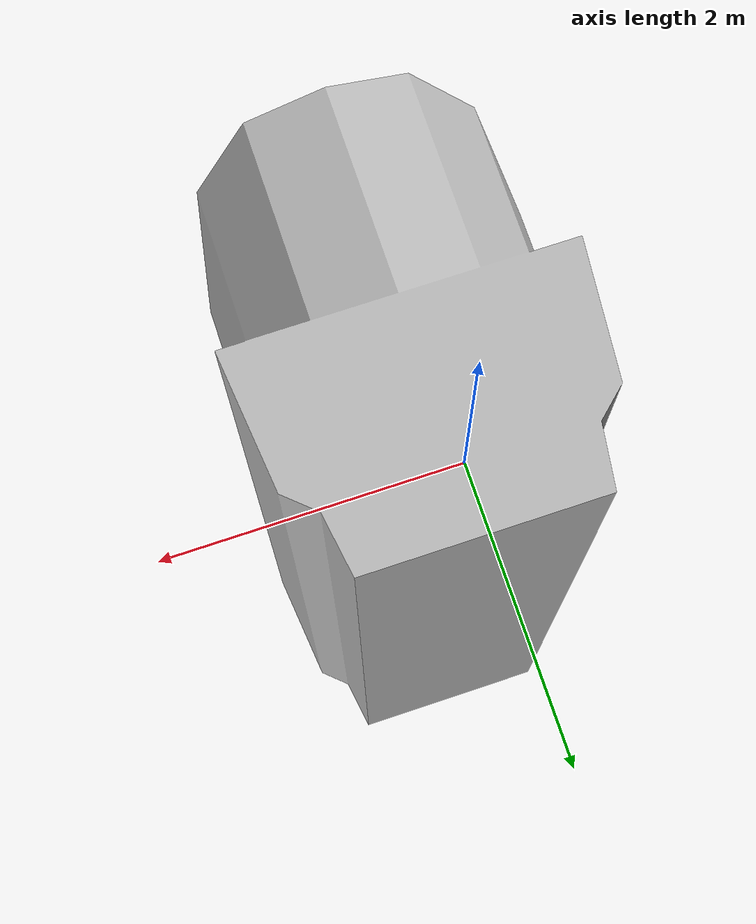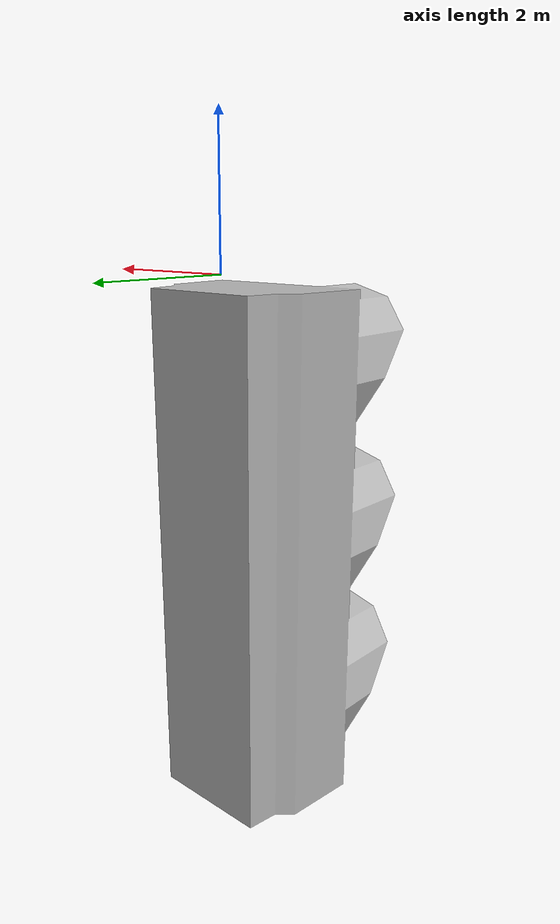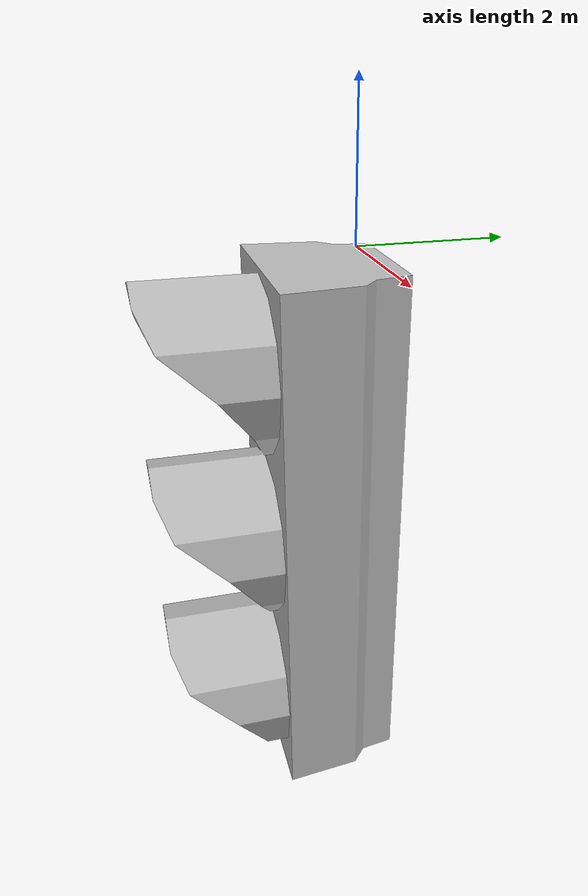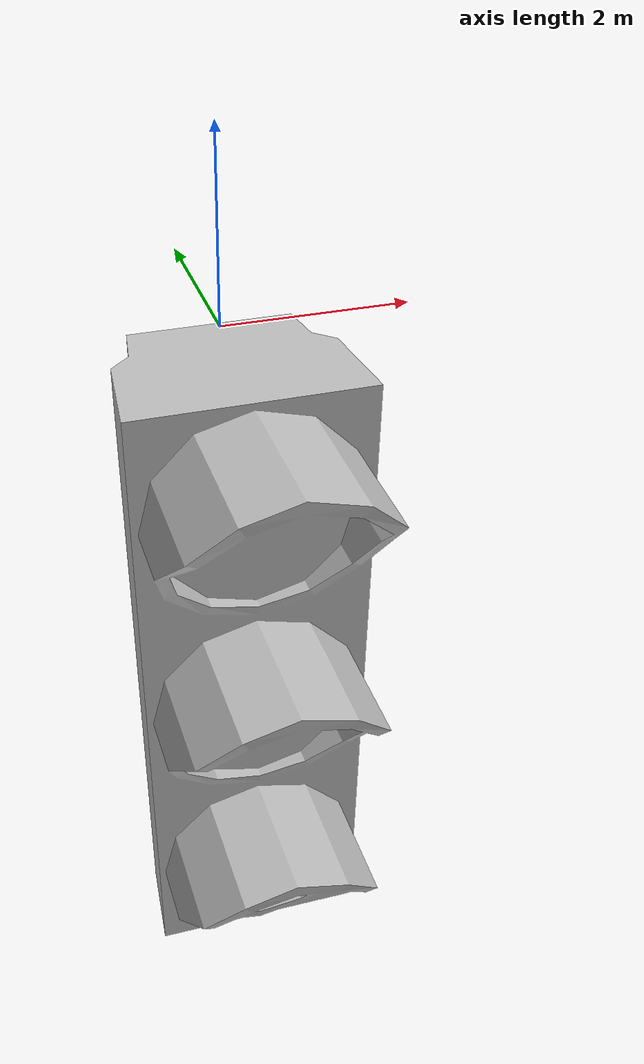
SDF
<?xml version="1.0" ?>
<sdf version="1.6">
  <model name="stop_light">
    <static>true</static>
    <link name="link">
      <collision name="collision">
        <geometry>
          <mesh>
            <scale>0.1 0.1 0.1</scale>
            <uri>model://stop_light/meshes/stop_light.obj</uri>
          </mesh>
        </geometry>
      </collision>

      <visual name="visual">
        <geometry>
          <mesh>
            <scale>0.1 0.1 0.1</scale>
            <uri>model://stop_light/meshes/stop_light.obj</uri>
          </mesh>
        </geometry>
      </visual>
    </link>
  </model>
</sdf>
